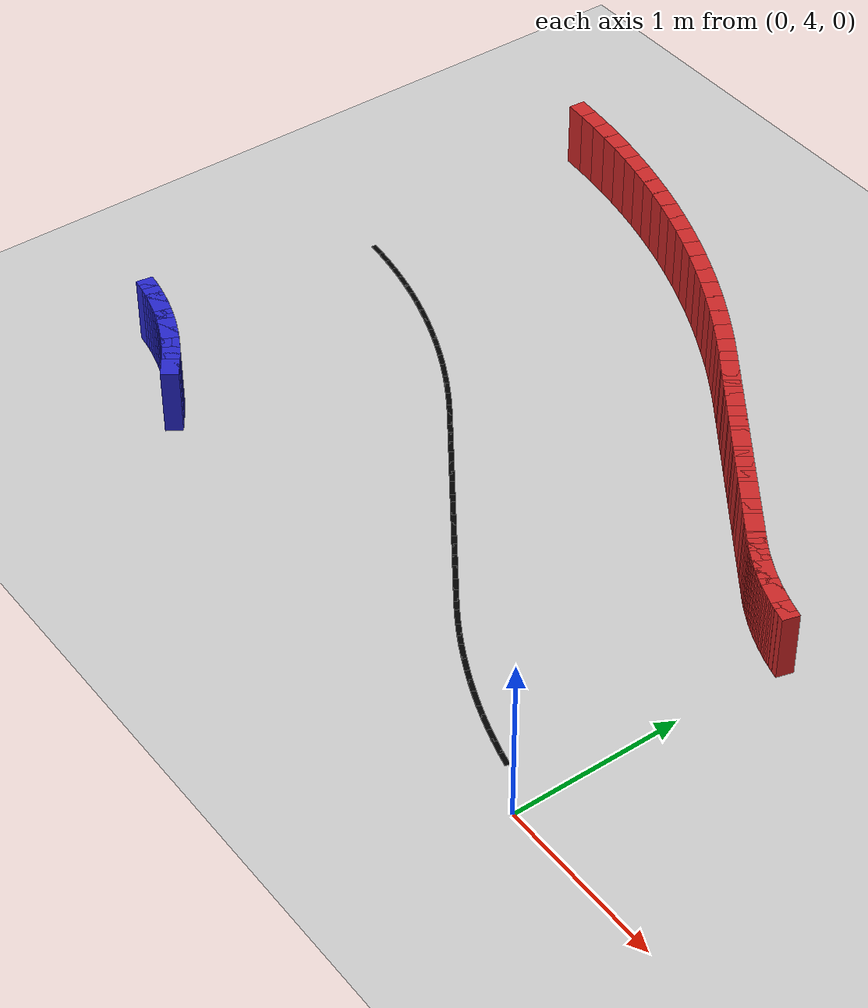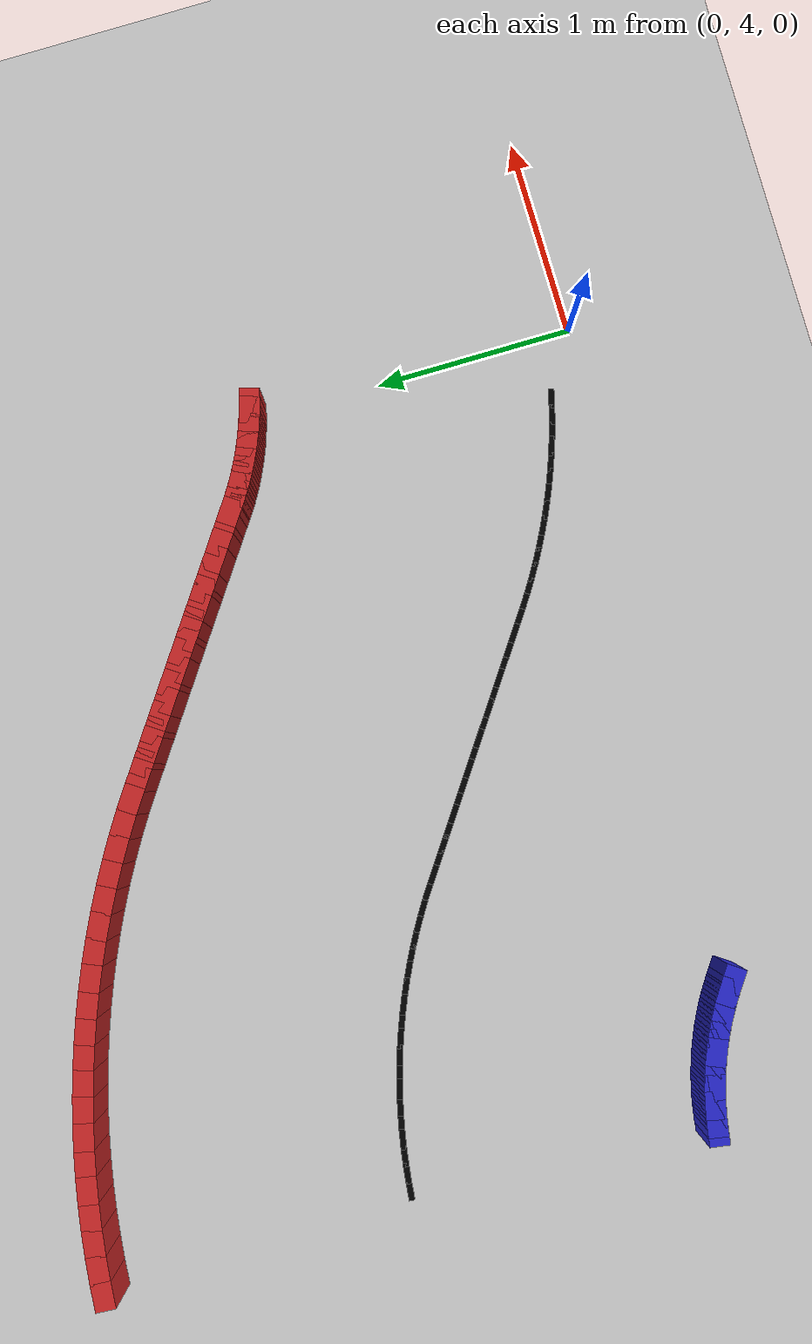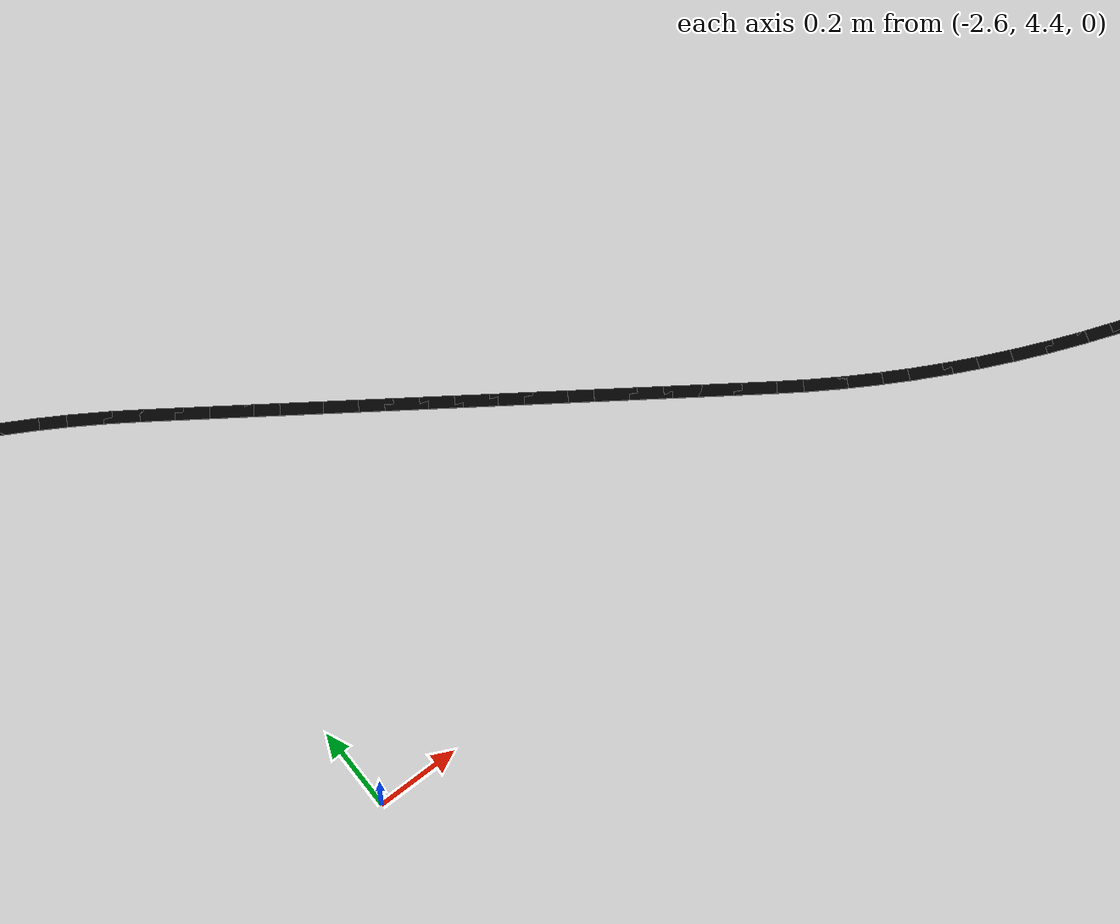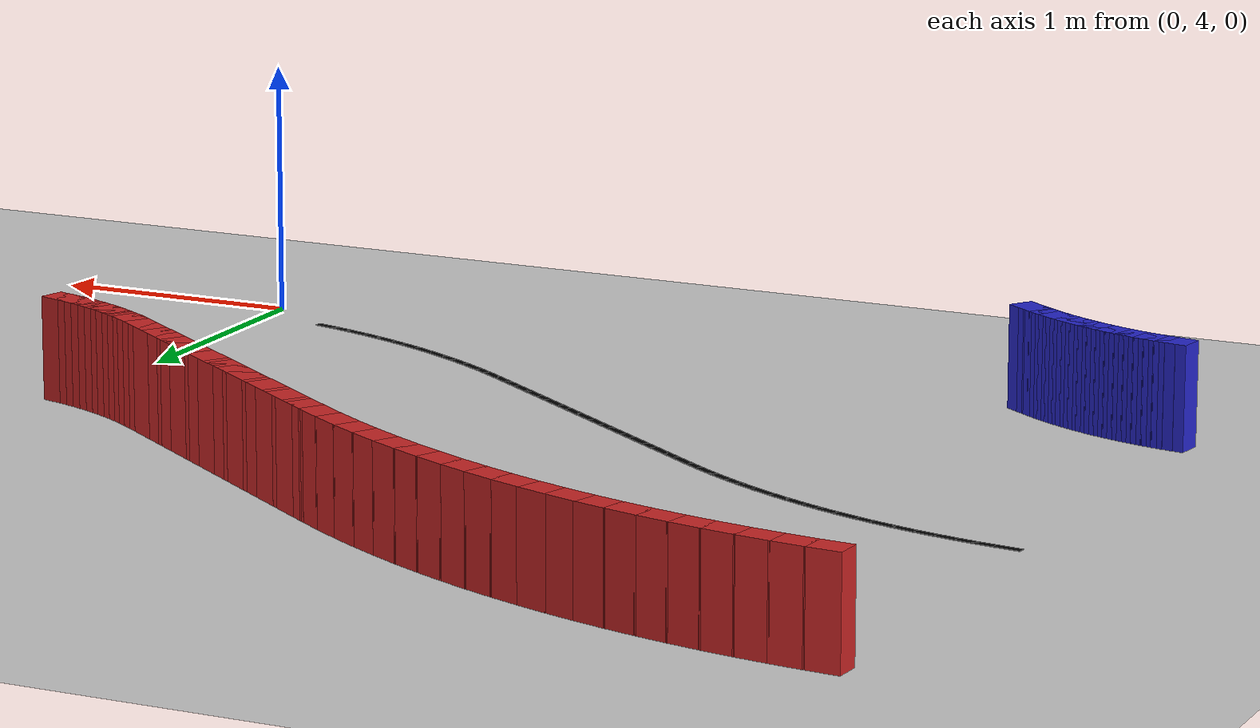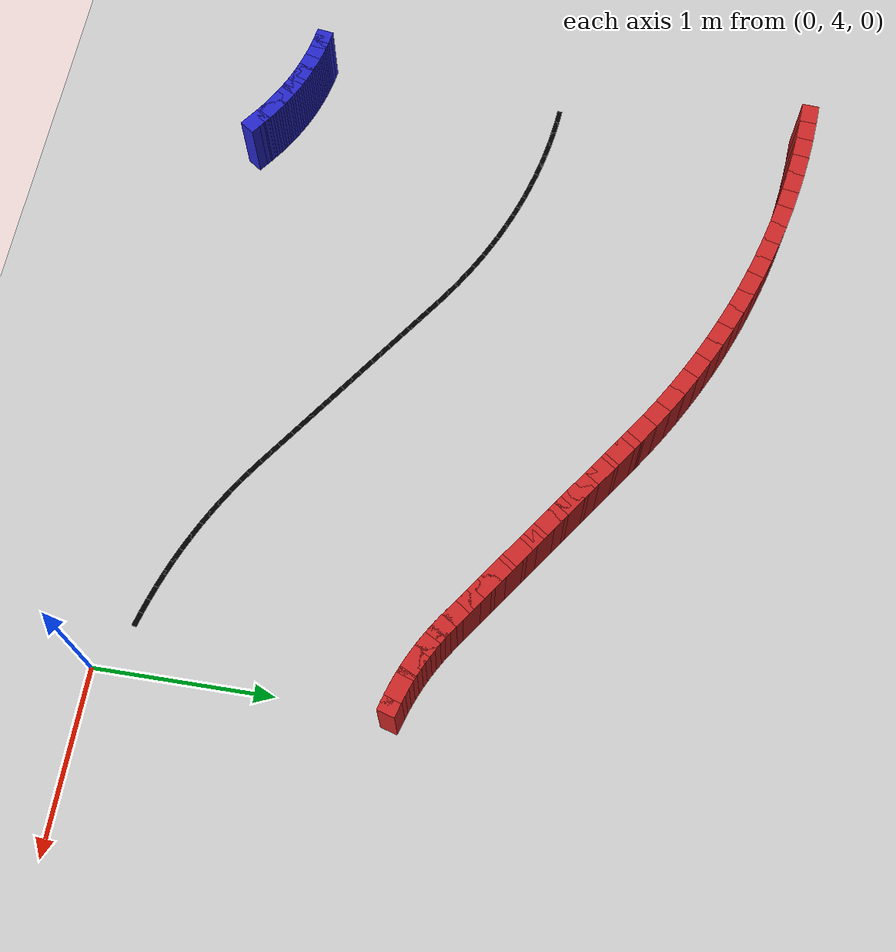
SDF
<sdf version="1.6">
 <world name="new_race_track">
  <include><uri>model://ground_plane</uri></include>
  <include><uri>model://sun</uri></include>
  <model name="iw_649">
   <static>true</static>
   <pose>-3.3089 4.2058 0.200 0 0 2.5307</pose>
   <link name="l">
    <collision name="c"><geometry><box><size>0.1300 0.1 0.4</size></box></geometry></collision>
    <visual name="v">
     <geometry><box><size>0.1300 0.1 0.4</size></box></geometry>
     <material><ambient>0.15 0.15 0.8 1</ambient><diffuse>0.15 0.15 0.8 1</diffuse></material>
    </visual>
   </link>
  </model>
  <model name="iw_650">
   <static>true</static>
   <pose>-3.3590 4.2403 0.200 0 0 2.5446</pose>
   <link name="l">
    <collision name="c"><geometry><box><size>0.1333 0.1 0.4</size></box></geometry></collision>
    <visual name="v">
     <geometry><box><size>0.1333 0.1 0.4</size></box></geometry>
     <material><ambient>0.15 0.15 0.8 1</ambient><diffuse>0.15 0.15 0.8 1</diffuse></material>
    </visual>
   </link>
  </model>
  <model name="iw_651">
   <static>true</static>
   <pose>-3.3938 4.2632 0.200 0 0 2.5724</pose>
   <link name="l">
    <collision name="c"><geometry><box><size>0.1333 0.1 0.4</size></box></geometry></collision>
    <visual name="v">
     <geometry><box><size>0.1333 0.1 0.4</size></box></geometry>
     <material><ambient>0.15 0.15 0.8 1</ambient><diffuse>0.15 0.15 0.8 1</diffuse></material>
    </visual>
   </link>
  </model>
  <model name="iw_652">
   <static>true</static>
   <pose>-3.4292 4.2852 0.200 0 0 2.6001</pose>
   <link name="l">
    <collision name="c"><geometry><box><size>0.1333 0.1 0.4</size></box></geometry></collision>
    <visual name="v">
     <geometry><box><size>0.1333 0.1 0.4</size></box></geometry>
     <material><ambient>0.15 0.15 0.8 1</ambient><diffuse>0.15 0.15 0.8 1</diffuse></material>
    </visual>
   </link>
  </model>
  <model name="iw_653">
   <static>true</static>
   <pose>-3.4651 4.3062 0.200 0 0 2.6279</pose>
   <link name="l">
    <collision name="c"><geometry><box><size>0.1333 0.1 0.4</size></box></geometry></collision>
    <visual name="v">
     <geometry><box><size>0.1333 0.1 0.4</size></box></geometry>
     <material><ambient>0.15 0.15 0.8 1</ambient><diffuse>0.15 0.15 0.8 1</diffuse></material>
    </visual>
   </link>
  </model>
  <model name="iw_654">
   <static>true</static>
   <pose>-3.5017 4.3261 0.200 0 0 2.6557</pose>
   <link name="l">
    <collision name="c"><geometry><box><size>0.1333 0.1 0.4</size></box></geometry></collision>
    <visual name="v">
     <geometry><box><size>0.1333 0.1 0.4</size></box></geometry>
     <material><ambient>0.15 0.15 0.8 1</ambient><diffuse>0.15 0.15 0.8 1</diffuse></material>
    </visual>
   </link>
  </model>
  <model name="iw_655">
   <static>true</static>
   <pose>-3.5388 4.3450 0.200 0 0 2.6834</pose>
   <link name="l">
    <collision name="c"><geometry><box><size>0.1333 0.1 0.4</size></box></geometry></collision>
    <visual name="v">
     <geometry><box><size>0.1333 0.1 0.4</size></box></geometry>
     <material><ambient>0.15 0.15 0.8 1</ambient><diffuse>0.15 0.15 0.8 1</diffuse></material>
    </visual>
   </link>
  </model>
  <model name="iw_656">
   <static>true</static>
   <pose>-3.5764 4.3629 0.200 0 0 2.7112</pose>
   <link name="l">
    <collision name="c"><geometry><box><size>0.1333 0.1 0.4</size></box></geometry></collision>
    <visual name="v">
     <geometry><box><size>0.1333 0.1 0.4</size></box></geometry>
     <material><ambient>0.15 0.15 0.8 1</ambient><diffuse>0.15 0.15 0.8 1</diffuse></material>
    </visual>
   </link>
  </model>
  <model name="iw_657">
   <static>true</static>
   <pose>-3.6144 4.3798 0.200 0 0 2.7390</pose>
   <link name="l">
    <collision name="c"><geometry><box><size>0.1333 0.1 0.4</size></box></geometry></collision>
    <visual name="v">
     <geometry><box><size>0.1333 0.1 0.4</size></box></geometry>
     <material><ambient>0.15 0.15 0.8 1</ambient><diffuse>0.15 0.15 0.8 1</diffuse></material>
    </visual>
   </link>
  </model>
  <model name="iw_658">
   <static>true</static>
   <pose>-3.6530 4.3956 0.200 0 0 2.7667</pose>
   <link name="l">
    <collision name="c"><geometry><box><size>0.1333 0.1 0.4</size></box></geometry></collision>
    <visual name="v">
     <geometry><box><size>0.1333 0.1 0.4</size></box></geometry>
     <material><ambient>0.15 0.15 0.8 1</ambient><diffuse>0.15 0.15 0.8 1</diffuse></material>
    </visual>
   </link>
  </model>
  <model name="iw_659">
   <static>true</static>
   <pose>-3.6919 4.4103 0.200 0 0 2.7945</pose>
   <link name="l">
    <collision name="c"><geometry><box><size>0.1333 0.1 0.4</size></box></geometry></collision>
    <visual name="v">
     <geometry><box><size>0.1333 0.1 0.4</size></box></geometry>
     <material><ambient>0.15 0.15 0.8 1</ambient><diffuse>0.15 0.15 0.8 1</diffuse></material>
    </visual>
   </link>
  </model>
  <model name="iw_660">
   <static>true</static>
   <pose>-3.7313 4.4239 0.200 0 0 2.8223</pose>
   <link name="l">
    <collision name="c"><geometry><box><size>0.1333 0.1 0.4</size></box></geometry></collision>
    <visual name="v">
     <geometry><box><size>0.1333 0.1 0.4</size></box></geometry>
     <material><ambient>0.15 0.15 0.8 1</ambient><diffuse>0.15 0.15 0.8 1</diffuse></material>
    </visual>
   </link>
  </model>
  <model name="iw_661">
   <static>true</static>
   <pose>-3.7710 4.4364 0.200 0 0 2.8500</pose>
   <link name="l">
    <collision name="c"><geometry><box><size>0.1333 0.1 0.4</size></box></geometry></collision>
    <visual name="v">
     <geometry><box><size>0.1333 0.1 0.4</size></box></geometry>
     <material><ambient>0.15 0.15 0.8 1</ambient><diffuse>0.15 0.15 0.8 1</diffuse></material>
    </visual>
   </link>
  </model>
  <model name="iw_662">
   <static>true</static>
   <pose>-3.8110 4.4478 0.200 0 0 2.8778</pose>
   <link name="l">
    <collision name="c"><geometry><box><size>0.1333 0.1 0.4</size></box></geometry></collision>
    <visual name="v">
     <geometry><box><size>0.1333 0.1 0.4</size></box></geometry>
     <material><ambient>0.15 0.15 0.8 1</ambient><diffuse>0.15 0.15 0.8 1</diffuse></material>
    </visual>
   </link>
  </model>
  <model name="iw_663">
   <static>true</static>
   <pose>-3.8514 4.4581 0.200 0 0 2.9056</pose>
   <link name="l">
    <collision name="c"><geometry><box><size>0.1333 0.1 0.4</size></box></geometry></collision>
    <visual name="v">
     <geometry><box><size>0.1333 0.1 0.4</size></box></geometry>
     <material><ambient>0.15 0.15 0.8 1</ambient><diffuse>0.15 0.15 0.8 1</diffuse></material>
    </visual>
   </link>
  </model>
  <model name="iw_664">
   <static>true</static>
   <pose>-3.8920 4.4673 0.200 0 0 2.9333</pose>
   <link name="l">
    <collision name="c"><geometry><box><size>0.1333 0.1 0.4</size></box></geometry></collision>
    <visual name="v">
     <geometry><box><size>0.1333 0.1 0.4</size></box></geometry>
     <material><ambient>0.15 0.15 0.8 1</ambient><diffuse>0.15 0.15 0.8 1</diffuse></material>
    </visual>
   </link>
  </model>
  <model name="iw_665">
   <static>true</static>
   <pose>-3.9329 4.4754 0.200 0 0 2.9611</pose>
   <link name="l">
    <collision name="c"><geometry><box><size>0.1333 0.1 0.4</size></box></geometry></collision>
    <visual name="v">
     <geometry><box><size>0.1333 0.1 0.4</size></box></geometry>
     <material><ambient>0.15 0.15 0.8 1</ambient><diffuse>0.15 0.15 0.8 1</diffuse></material>
    </visual>
   </link>
  </model>
  <model name="iw_666">
   <static>true</static>
   <pose>-3.9739 4.4823 0.200 0 0 2.9889</pose>
   <link name="l">
    <collision name="c"><geometry><box><size>0.1333 0.1 0.4</size></box></geometry></collision>
    <visual name="v">
     <geometry><box><size>0.1333 0.1 0.4</size></box></geometry>
     <material><ambient>0.15 0.15 0.8 1</ambient><diffuse>0.15 0.15 0.8 1</diffuse></material>
    </visual>
   </link>
  </model>
  <model name="ow_619">
   <static>true</static>
   <pose>0.0168 5.6442 0.200 0 0 2.8701</pose>
   <link name="l">
    <collision name="c"><geometry><box><size>0.1314 0.1 0.4</size></box></geometry></collision>
    <visual name="v">
     <geometry><box><size>0.1314 0.1 0.4</size></box></geometry>
     <material><ambient>0.8 0.15 0.15 1</ambient><diffuse>0.8 0.15 0.15 1</diffuse></material>
    </visual>
   </link>
  </model>
  <model name="ow_620">
   <static>true</static>
   <pose>-0.0223 5.6556 0.200 0 0 2.8429</pose>
   <link name="l">
    <collision name="c"><geometry><box><size>0.1314 0.1 0.4</size></box></geometry></collision>
    <visual name="v">
     <geometry><box><size>0.1314 0.1 0.4</size></box></geometry>
     <material><ambient>0.8 0.15 0.15 1</ambient><diffuse>0.8 0.15 0.15 1</diffuse></material>
    </visual>
   </link>
  </model>
  <model name="ow_621">
   <static>true</static>
   <pose>-0.0610 5.6681 0.200 0 0 2.8158</pose>
   <link name="l">
    <collision name="c"><geometry><box><size>0.1314 0.1 0.4</size></box></geometry></collision>
    <visual name="v">
     <geometry><box><size>0.1314 0.1 0.4</size></box></geometry>
     <material><ambient>0.8 0.15 0.15 1</ambient><diffuse>0.8 0.15 0.15 1</diffuse></material>
    </visual>
   </link>
  </model>
  <model name="ow_622">
   <static>true</static>
   <pose>-0.0994 5.6817 0.200 0 0 2.7886</pose>
   <link name="l">
    <collision name="c"><geometry><box><size>0.1314 0.1 0.4</size></box></geometry></collision>
    <visual name="v">
     <geometry><box><size>0.1314 0.1 0.4</size></box></geometry>
     <material><ambient>0.8 0.15 0.15 1</ambient><diffuse>0.8 0.15 0.15 1</diffuse></material>
    </visual>
   </link>
  </model>
  <model name="ow_623">
   <static>true</static>
   <pose>-0.1374 5.6963 0.200 0 0 2.7615</pose>
   <link name="l">
    <collision name="c"><geometry><box><size>0.1314 0.1 0.4</size></box></geometry></collision>
    <visual name="v">
     <geometry><box><size>0.1314 0.1 0.4</size></box></geometry>
     <material><ambient>0.8 0.15 0.15 1</ambient><diffuse>0.8 0.15 0.15 1</diffuse></material>
    </visual>
   </link>
  </model>
  <model name="ow_624">
   <static>true</static>
   <pose>-0.1750 5.7119 0.200 0 0 2.7343</pose>
   <link name="l">
    <collision name="c"><geometry><box><size>0.1314 0.1 0.4</size></box></geometry></collision>
    <visual name="v">
     <geometry><box><size>0.1314 0.1 0.4</size></box></geometry>
     <material><ambient>0.8 0.15 0.15 1</ambient><diffuse>0.8 0.15 0.15 1</diffuse></material>
    </visual>
   </link>
  </model>
  <model name="ow_625">
   <static>true</static>
   <pose>-0.2122 5.7285 0.200 0 0 2.7072</pose>
   <link name="l">
    <collision name="c"><geometry><box><size>0.1314 0.1 0.4</size></box></geometry></collision>
    <visual name="v">
     <geometry><box><size>0.1314 0.1 0.4</size></box></geometry>
     <material><ambient>0.8 0.15 0.15 1</ambient><diffuse>0.8 0.15 0.15 1</diffuse></material>
    </visual>
   </link>
  </model>
  <model name="ow_626">
   <static>true</static>
   <pose>-0.2489 5.7462 0.200 0 0 2.6801</pose>
   <link name="l">
    <collision name="c"><geometry><box><size>0.1314 0.1 0.4</size></box></geometry></collision>
    <visual name="v">
     <geometry><box><size>0.1314 0.1 0.4</size></box></geometry>
     <material><ambient>0.8 0.15 0.15 1</ambient><diffuse>0.8 0.15 0.15 1</diffuse></material>
    </visual>
   </link>
  </model>
  <model name="ow_627">
   <static>true</static>
   <pose>-0.2851 5.7648 0.200 0 0 2.6529</pose>
   <link name="l">
    <collision name="c"><geometry><box><size>0.1314 0.1 0.4</size></box></geometry></collision>
    <visual name="v">
     <geometry><box><size>0.1314 0.1 0.4</size></box></geometry>
     <material><ambient>0.8 0.15 0.15 1</ambient><diffuse>0.8 0.15 0.15 1</diffuse></material>
    </visual>
   </link>
  </model>
  <model name="ow_628">
   <static>true</static>
   <pose>-0.3208 5.7844 0.200 0 0 2.6258</pose>
   <link name="l">
    <collision name="c"><geometry><box><size>0.1314 0.1 0.4</size></box></geometry></collision>
    <visual name="v">
     <geometry><box><size>0.1314 0.1 0.4</size></box></geometry>
     <material><ambient>0.8 0.15 0.15 1</ambient><diffuse>0.8 0.15 0.15 1</diffuse></material>
    </visual>
   </link>
  </model>
  <model name="ow_629">
   <static>true</static>
   <pose>-0.3559 5.8049 0.200 0 0 2.5986</pose>
   <link name="l">
    <collision name="c"><geometry><box><size>0.1314 0.1 0.4</size></box></geometry></collision>
    <visual name="v">
     <geometry><box><size>0.1314 0.1 0.4</size></box></geometry>
     <material><ambient>0.8 0.15 0.15 1</ambient><diffuse>0.8 0.15 0.15 1</diffuse></material>
    </visual>
   </link>
  </model>
  <model name="ow_630">
   <static>true</static>
   <pose>-0.3905 5.8265 0.200 0 0 2.5715</pose>
   <link name="l">
    <collision name="c"><geometry><box><size>0.1314 0.1 0.4</size></box></geometry></collision>
    <visual name="v">
     <geometry><box><size>0.1314 0.1 0.4</size></box></geometry>
     <material><ambient>0.8 0.15 0.15 1</ambient><diffuse>0.8 0.15 0.15 1</diffuse></material>
    </visual>
   </link>
  </model>
  <model name="ow_631">
   <static>true</static>
   <pose>-0.4245 5.8489 0.200 0 0 2.5443</pose>
   <link name="l">
    <collision name="c"><geometry><box><size>0.1314 0.1 0.4</size></box></geometry></collision>
    <visual name="v">
     <geometry><box><size>0.1314 0.1 0.4</size></box></geometry>
     <material><ambient>0.8 0.15 0.15 1</ambient><diffuse>0.8 0.15 0.15 1</diffuse></material>
    </visual>
   </link>
  </model>
  <model name="ow_632">
   <static>true</static>
   <pose>-0.4742 5.8832 0.200 0 0 2.5307</pose>
   <link name="l">
    <collision name="c"><geometry><box><size>0.1300 0.1 0.4</size></box></geometry></collision>
    <visual name="v">
     <geometry><box><size>0.1300 0.1 0.4</size></box></geometry>
     <material><ambient>0.8 0.15 0.15 1</ambient><diffuse>0.8 0.15 0.15 1</diffuse></material>
    </visual>
   </link>
  </model>
  <model name="ow_633">
   <static>true</static>
   <pose>-0.5397 5.9291 0.200 0 0 2.5307</pose>
   <link name="l">
    <collision name="c"><geometry><box><size>0.1300 0.1 0.4</size></box></geometry></collision>
    <visual name="v">
     <geometry><box><size>0.1300 0.1 0.4</size></box></geometry>
     <material><ambient>0.8 0.15 0.15 1</ambient><diffuse>0.8 0.15 0.15 1</diffuse></material>
    </visual>
   </link>
  </model>
  <model name="ow_634">
   <static>true</static>
   <pose>-0.6052 5.9749 0.200 0 0 2.5307</pose>
   <link name="l">
    <collision name="c"><geometry><box><size>0.1300 0.1 0.4</size></box></geometry></collision>
    <visual name="v">
     <geometry><box><size>0.1300 0.1 0.4</size></box></geometry>
     <material><ambient>0.8 0.15 0.15 1</ambient><diffuse>0.8 0.15 0.15 1</diffuse></material>
    </visual>
   </link>
  </model>
  <model name="ow_635">
   <static>true</static>
   <pose>-0.6708 6.0208 0.200 0 0 2.5307</pose>
   <link name="l">
    <collision name="c"><geometry><box><size>0.1300 0.1 0.4</size></box></geometry></collision>
    <visual name="v">
     <geometry><box><size>0.1300 0.1 0.4</size></box></geometry>
     <material><ambient>0.8 0.15 0.15 1</ambient><diffuse>0.8 0.15 0.15 1</diffuse></material>
    </visual>
   </link>
  </model>
  <model name="ow_636">
   <static>true</static>
   <pose>-0.7363 6.0667 0.200 0 0 2.5307</pose>
   <link name="l">
    <collision name="c"><geometry><box><size>0.1300 0.1 0.4</size></box></geometry></collision>
    <visual name="v">
     <geometry><box><size>0.1300 0.1 0.4</size></box></geometry>
     <material><ambient>0.8 0.15 0.15 1</ambient><diffuse>0.8 0.15 0.15 1</diffuse></material>
    </visual>
   </link>
  </model>
  <model name="ow_637">
   <static>true</static>
   <pose>-0.8018 6.1126 0.200 0 0 2.5307</pose>
   <link name="l">
    <collision name="c"><geometry><box><size>0.1300 0.1 0.4</size></box></geometry></collision>
    <visual name="v">
     <geometry><box><size>0.1300 0.1 0.4</size></box></geometry>
     <material><ambient>0.8 0.15 0.15 1</ambient><diffuse>0.8 0.15 0.15 1</diffuse></material>
    </visual>
   </link>
  </model>
  <model name="ow_638">
   <static>true</static>
   <pose>-0.8674 6.1585 0.200 0 0 2.5307</pose>
   <link name="l">
    <collision name="c"><geometry><box><size>0.1300 0.1 0.4</size></box></geometry></collision>
    <visual name="v">
     <geometry><box><size>0.1300 0.1 0.4</size></box></geometry>
     <material><ambient>0.8 0.15 0.15 1</ambient><diffuse>0.8 0.15 0.15 1</diffuse></material>
    </visual>
   </link>
  </model>
  <model name="ow_639">
   <static>true</static>
   <pose>-0.9329 6.2044 0.200 0 0 2.5307</pose>
   <link name="l">
    <collision name="c"><geometry><box><size>0.1300 0.1 0.4</size></box></geometry></collision>
    <visual name="v">
     <geometry><box><size>0.1300 0.1 0.4</size></box></geometry>
     <material><ambient>0.8 0.15 0.15 1</ambient><diffuse>0.8 0.15 0.15 1</diffuse></material>
    </visual>
   </link>
  </model>
  <model name="ow_640">
   <static>true</static>
   <pose>-0.9984 6.2503 0.200 0 0 2.5307</pose>
   <link name="l">
    <collision name="c"><geometry><box><size>0.1300 0.1 0.4</size></box></geometry></collision>
    <visual name="v">
     <geometry><box><size>0.1300 0.1 0.4</size></box></geometry>
     <material><ambient>0.8 0.15 0.15 1</ambient><diffuse>0.8 0.15 0.15 1</diffuse></material>
    </visual>
   </link>
  </model>
  <model name="ow_641">
   <static>true</static>
   <pose>-1.0640 6.2962 0.200 0 0 2.5307</pose>
   <link name="l">
    <collision name="c"><geometry><box><size>0.1300 0.1 0.4</size></box></geometry></collision>
    <visual name="v">
     <geometry><box><size>0.1300 0.1 0.4</size></box></geometry>
     <material><ambient>0.8 0.15 0.15 1</ambient><diffuse>0.8 0.15 0.15 1</diffuse></material>
    </visual>
   </link>
  </model>
  <model name="ow_642">
   <static>true</static>
   <pose>-1.1295 6.3420 0.200 0 0 2.5307</pose>
   <link name="l">
    <collision name="c"><geometry><box><size>0.1300 0.1 0.4</size></box></geometry></collision>
    <visual name="v">
     <geometry><box><size>0.1300 0.1 0.4</size></box></geometry>
     <material><ambient>0.8 0.15 0.15 1</ambient><diffuse>0.8 0.15 0.15 1</diffuse></material>
    </visual>
   </link>
  </model>
  <model name="ow_643">
   <static>true</static>
   <pose>-1.1950 6.3879 0.200 0 0 2.5307</pose>
   <link name="l">
    <collision name="c"><geometry><box><size>0.1300 0.1 0.4</size></box></geometry></collision>
    <visual name="v">
     <geometry><box><size>0.1300 0.1 0.4</size></box></geometry>
     <material><ambient>0.8 0.15 0.15 1</ambient><diffuse>0.8 0.15 0.15 1</diffuse></material>
    </visual>
   </link>
  </model>
  <model name="ow_644">
   <static>true</static>
   <pose>-1.2606 6.4338 0.200 0 0 2.5307</pose>
   <link name="l">
    <collision name="c"><geometry><box><size>0.1300 0.1 0.4</size></box></geometry></collision>
    <visual name="v">
     <geometry><box><size>0.1300 0.1 0.4</size></box></geometry>
     <material><ambient>0.8 0.15 0.15 1</ambient><diffuse>0.8 0.15 0.15 1</diffuse></material>
    </visual>
   </link>
  </model>
  <model name="ow_645">
   <static>true</static>
   <pose>-1.3261 6.4797 0.200 0 0 2.5307</pose>
   <link name="l">
    <collision name="c"><geometry><box><size>0.1300 0.1 0.4</size></box></geometry></collision>
    <visual name="v">
     <geometry><box><size>0.1300 0.1 0.4</size></box></geometry>
     <material><ambient>0.8 0.15 0.15 1</ambient><diffuse>0.8 0.15 0.15 1</diffuse></material>
    </visual>
   </link>
  </model>
  <model name="ow_646">
   <static>true</static>
   <pose>-1.3916 6.5256 0.200 0 0 2.5307</pose>
   <link name="l">
    <collision name="c"><geometry><box><size>0.1300 0.1 0.4</size></box></geometry></collision>
    <visual name="v">
     <geometry><box><size>0.1300 0.1 0.4</size></box></geometry>
     <material><ambient>0.8 0.15 0.15 1</ambient><diffuse>0.8 0.15 0.15 1</diffuse></material>
    </visual>
   </link>
  </model>
  <model name="ow_647">
   <static>true</static>
   <pose>-1.4572 6.5715 0.200 0 0 2.5307</pose>
   <link name="l">
    <collision name="c"><geometry><box><size>0.1300 0.1 0.4</size></box></geometry></collision>
    <visual name="v">
     <geometry><box><size>0.1300 0.1 0.4</size></box></geometry>
     <material><ambient>0.8 0.15 0.15 1</ambient><diffuse>0.8 0.15 0.15 1</diffuse></material>
    </visual>
   </link>
  </model>
  <model name="ow_648">
   <static>true</static>
   <pose>-1.5227 6.6174 0.200 0 0 2.5307</pose>
   <link name="l">
    <collision name="c"><geometry><box><size>0.1300 0.1 0.4</size></box></geometry></collision>
    <visual name="v">
     <geometry><box><size>0.1300 0.1 0.4</size></box></geometry>
     <material><ambient>0.8 0.15 0.15 1</ambient><diffuse>0.8 0.15 0.15 1</diffuse></material>
    </visual>
   </link>
  </model>
  <model name="ow_649">
   <static>true</static>
   <pose>-1.5882 6.6632 0.200 0 0 2.5307</pose>
   <link name="l">
    <collision name="c"><geometry><box><size>0.1300 0.1 0.4</size></box></geometry></collision>
    <visual name="v">
     <geometry><box><size>0.1300 0.1 0.4</size></box></geometry>
     <material><ambient>0.8 0.15 0.15 1</ambient><diffuse>0.8 0.15 0.15 1</diffuse></material>
    </visual>
   </link>
  </model>
  <model name="ow_650">
   <static>true</static>
   <pose>-1.6726 6.7214 0.200 0 0 2.5446</pose>
   <link name="l">
    <collision name="c"><geometry><box><size>0.1333 0.1 0.4</size></box></geometry></collision>
    <visual name="v">
     <geometry><box><size>0.1333 0.1 0.4</size></box></geometry>
     <material><ambient>0.8 0.15 0.15 1</ambient><diffuse>0.8 0.15 0.15 1</diffuse></material>
    </visual>
   </link>
  </model>
  <model name="ow_651">
   <static>true</static>
   <pose>-1.7769 6.7902 0.200 0 0 2.5724</pose>
   <link name="l">
    <collision name="c"><geometry><box><size>0.1333 0.1 0.4</size></box></geometry></collision>
    <visual name="v">
     <geometry><box><size>0.1333 0.1 0.4</size></box></geometry>
     <material><ambient>0.8 0.15 0.15 1</ambient><diffuse>0.8 0.15 0.15 1</diffuse></material>
    </visual>
   </link>
  </model>
  <model name="ow_652">
   <static>true</static>
   <pose>-1.8830 6.8561 0.200 0 0 2.6001</pose>
   <link name="l">
    <collision name="c"><geometry><box><size>0.1333 0.1 0.4</size></box></geometry></collision>
    <visual name="v">
     <geometry><box><size>0.1333 0.1 0.4</size></box></geometry>
     <material><ambient>0.8 0.15 0.15 1</ambient><diffuse>0.8 0.15 0.15 1</diffuse></material>
    </visual>
   </link>
  </model>
  <model name="ow_653">
   <static>true</static>
   <pose>-1.9910 6.9190 0.200 0 0 2.6279</pose>
   <link name="l">
    <collision name="c"><geometry><box><size>0.1333 0.1 0.4</size></box></geometry></collision>
    <visual name="v">
     <geometry><box><size>0.1333 0.1 0.4</size></box></geometry>
     <material><ambient>0.8 0.15 0.15 1</ambient><diffuse>0.8 0.15 0.15 1</diffuse></material>
    </visual>
   </link>
  </model>
  <model name="ow_654">
   <static>true</static>
   <pose>-2.1006 6.9789 0.200 0 0 2.6557</pose>
   <link name="l">
    <collision name="c"><geometry><box><size>0.1333 0.1 0.4</size></box></geometry></collision>
    <visual name="v">
     <geometry><box><size>0.1333 0.1 0.4</size></box></geometry>
     <material><ambient>0.8 0.15 0.15 1</ambient><diffuse>0.8 0.15 0.15 1</diffuse></material>
    </visual>
   </link>
  </model>
  <model name="ow_655">
   <static>true</static>
   <pose>-2.2119 7.0357 0.200 0 0 2.6834</pose>
   <link name="l">
    <collision name="c"><geometry><box><size>0.1333 0.1 0.4</size></box></geometry></collision>
    <visual name="v">
     <geometry><box><size>0.1333 0.1 0.4</size></box></geometry>
     <material><ambient>0.8 0.15 0.15 1</ambient><diffuse>0.8 0.15 0.15 1</diffuse></material>
    </visual>
   </link>
  </model>
  <model name="ow_656">
   <static>true</static>
   <pose>-2.3247 7.0894 0.200 0 0 2.7112</pose>
   <link name="l">
    <collision name="c"><geometry><box><size>0.1333 0.1 0.4</size></box></geometry></collision>
    <visual name="v">
     <geometry><box><size>0.1333 0.1 0.4</size></box></geometry>
     <material><ambient>0.8 0.15 0.15 1</ambient><diffuse>0.8 0.15 0.15 1</diffuse></material>
    </visual>
   </link>
  </model>
  <model name="ow_657">
   <static>true</static>
   <pose>-2.4390 7.1399 0.200 0 0 2.7390</pose>
   <link name="l">
    <collision name="c"><geometry><box><size>0.1333 0.1 0.4</size></box></geometry></collision>
    <visual name="v">
     <geometry><box><size>0.1333 0.1 0.4</size></box></geometry>
     <material><ambient>0.8 0.15 0.15 1</ambient><diffuse>0.8 0.15 0.15 1</diffuse></material>
    </visual>
   </link>
  </model>
  <model name="ow_658">
   <static>true</static>
   <pose>-2.5546 7.1873 0.200 0 0 2.7667</pose>
   <link name="l">
    <collision name="c"><geometry><box><size>0.1333 0.1 0.4</size></box></geometry></collision>
    <visual name="v">
     <geometry><box><size>0.1333 0.1 0.4</size></box></geometry>
     <material><ambient>0.8 0.15 0.15 1</ambient><diffuse>0.8 0.15 0.15 1</diffuse></material>
    </visual>
   </link>
  </model>
  <model name="ow_659">
   <static>true</static>
   <pose>-2.6715 7.2314 0.200 0 0 2.7945</pose>
   <link name="l">
    <collision name="c"><geometry><box><size>0.1333 0.1 0.4</size></box></geometry></collision>
    <visual name="v">
     <geometry><box><size>0.1333 0.1 0.4</size></box></geometry>
     <material><ambient>0.8 0.15 0.15 1</ambient><diffuse>0.8 0.15 0.15 1</diffuse></material>
    </visual>
   </link>
  </model>
  <model name="ow_660">
   <static>true</static>
   <pose>-2.7895 7.2723 0.200 0 0 2.8223</pose>
   <link name="l">
    <collision name="c"><geometry><box><size>0.1333 0.1 0.4</size></box></geometry></collision>
    <visual name="v">
     <geometry><box><size>0.1333 0.1 0.4</size></box></geometry>
     <material><ambient>0.8 0.15 0.15 1</ambient><diffuse>0.8 0.15 0.15 1</diffuse></material>
    </visual>
   </link>
  </model>
  <model name="ow_661">
   <static>true</static>
   <pose>-2.9087 7.3098 0.200 0 0 2.8500</pose>
   <link name="l">
    <collision name="c"><geometry><box><size>0.1333 0.1 0.4</size></box></geometry></collision>
    <visual name="v">
     <geometry><box><size>0.1333 0.1 0.4</size></box></geometry>
     <material><ambient>0.8 0.15 0.15 1</ambient><diffuse>0.8 0.15 0.15 1</diffuse></material>
    </visual>
   </link>
  </model>
  <model name="ow_662">
   <static>true</static>
   <pose>-3.0288 7.3441 0.200 0 0 2.8778</pose>
   <link name="l">
    <collision name="c"><geometry><box><size>0.1333 0.1 0.4</size></box></geometry></collision>
    <visual name="v">
     <geometry><box><size>0.1333 0.1 0.4</size></box></geometry>
     <material><ambient>0.8 0.15 0.15 1</ambient><diffuse>0.8 0.15 0.15 1</diffuse></material>
    </visual>
   </link>
  </model>
  <model name="ow_663">
   <static>true</static>
   <pose>-3.1499 7.3750 0.200 0 0 2.9056</pose>
   <link name="l">
    <collision name="c"><geometry><box><size>0.1333 0.1 0.4</size></box></geometry></collision>
    <visual name="v">
     <geometry><box><size>0.1333 0.1 0.4</size></box></geometry>
     <material><ambient>0.8 0.15 0.15 1</ambient><diffuse>0.8 0.15 0.15 1</diffuse></material>
    </visual>
   </link>
  </model>
  <model name="ow_664">
   <static>true</static>
   <pose>-3.2718 7.4025 0.200 0 0 2.9333</pose>
   <link name="l">
    <collision name="c"><geometry><box><size>0.1333 0.1 0.4</size></box></geometry></collision>
    <visual name="v">
     <geometry><box><size>0.1333 0.1 0.4</size></box></geometry>
     <material><ambient>0.8 0.15 0.15 1</ambient><diffuse>0.8 0.15 0.15 1</diffuse></material>
    </visual>
   </link>
  </model>
  <model name="ow_665">
   <static>true</static>
   <pose>-3.3944 7.4266 0.200 0 0 2.9611</pose>
   <link name="l">
    <collision name="c"><geometry><box><size>0.1333 0.1 0.4</size></box></geometry></collision>
    <visual name="v">
     <geometry><box><size>0.1333 0.1 0.4</size></box></geometry>
     <material><ambient>0.8 0.15 0.15 1</ambient><diffuse>0.8 0.15 0.15 1</diffuse></material>
    </visual>
   </link>
  </model>
  <model name="ow_666">
   <static>true</static>
   <pose>-3.5176 7.4473 0.200 0 0 2.9889</pose>
   <link name="l">
    <collision name="c"><geometry><box><size>0.1333 0.1 0.4</size></box></geometry></collision>
    <visual name="v">
     <geometry><box><size>0.1333 0.1 0.4</size></box></geometry>
     <material><ambient>0.8 0.15 0.15 1</ambient><diffuse>0.8 0.15 0.15 1</diffuse></material>
    </visual>
   </link>
  </model>
  <model name="ow_667">
   <static>true</static>
   <pose>-3.6413 7.4646 0.200 0 0 3.0166</pose>
   <link name="l">
    <collision name="c"><geometry><box><size>0.1333 0.1 0.4</size></box></geometry></collision>
    <visual name="v">
     <geometry><box><size>0.1333 0.1 0.4</size></box></geometry>
     <material><ambient>0.8 0.15 0.15 1</ambient><diffuse>0.8 0.15 0.15 1</diffuse></material>
    </visual>
   </link>
  </model>
  <model name="ow_668">
   <static>true</static>
   <pose>-3.7655 7.4785 0.200 0 0 3.0444</pose>
   <link name="l">
    <collision name="c"><geometry><box><size>0.1333 0.1 0.4</size></box></geometry></collision>
    <visual name="v">
     <geometry><box><size>0.1333 0.1 0.4</size></box></geometry>
     <material><ambient>0.8 0.15 0.15 1</ambient><diffuse>0.8 0.15 0.15 1</diffuse></material>
    </visual>
   </link>
  </model>
  <model name="ow_669">
   <static>true</static>
   <pose>-3.8900 7.4889 0.200 0 0 3.0722</pose>
   <link name="l">
    <collision name="c"><geometry><box><size>0.1333 0.1 0.4</size></box></geometry></collision>
    <visual name="v">
     <geometry><box><size>0.1333 0.1 0.4</size></box></geometry>
     <material><ambient>0.8 0.15 0.15 1</ambient><diffuse>0.8 0.15 0.15 1</diffuse></material>
    </visual>
   </link>
  </model>
  <model name="line_618">
   <static>true</static>
   <pose>-0.3067 4.1783 0.002 0 0 2.8972</pose>
   <link name="l">
    <visual name="v">
     <geometry><box><size>0.1014 0.03 0.002</size></box></geometry>
     <material><ambient>0 0 0 1</ambient><diffuse>0 0 0 1</diffuse></material>
    </visual>
   </link>
  </model>
  <model name="line_619">
   <static>true</static>
   <pose>-0.3855 4.1991 0.002 0 0 2.8701</pose>
   <link name="l">
    <visual name="v">
     <geometry><box><size>0.1014 0.03 0.002</size></box></geometry>
     <material><ambient>0 0 0 1</ambient><diffuse>0 0 0 1</diffuse></material>
    </visual>
   </link>
  </model>
  <model name="line_620">
   <static>true</static>
   <pose>-0.4636 4.2220 0.002 0 0 2.8429</pose>
   <link name="l">
    <visual name="v">
     <geometry><box><size>0.1014 0.03 0.002</size></box></geometry>
     <material><ambient>0 0 0 1</ambient><diffuse>0 0 0 1</diffuse></material>
    </visual>
   </link>
  </model>
  <model name="line_621">
   <static>true</static>
   <pose>-0.5411 4.2470 0.002 0 0 2.8158</pose>
   <link name="l">
    <visual name="v">
     <geometry><box><size>0.1014 0.03 0.002</size></box></geometry>
     <material><ambient>0 0 0 1</ambient><diffuse>0 0 0 1</diffuse></material>
    </visual>
   </link>
  </model>
  <model name="line_622">
   <static>true</static>
   <pose>-0.6179 4.2741 0.002 0 0 2.7886</pose>
   <link name="l">
    <visual name="v">
     <geometry><box><size>0.1014 0.03 0.002</size></box></geometry>
     <material><ambient>0 0 0 1</ambient><diffuse>0 0 0 1</diffuse></material>
    </visual>
   </link>
  </model>
  <model name="line_623">
   <static>true</static>
   <pose>-0.6940 4.3033 0.002 0 0 2.7615</pose>
   <link name="l">
    <visual name="v">
     <geometry><box><size>0.1014 0.03 0.002</size></box></geometry>
     <material><ambient>0 0 0 1</ambient><diffuse>0 0 0 1</diffuse></material>
    </visual>
   </link>
  </model>
  <model name="line_624">
   <static>true</static>
   <pose>-0.7692 4.3346 0.002 0 0 2.7343</pose>
   <link name="l">
    <visual name="v">
     <geometry><box><size>0.1014 0.03 0.002</size></box></geometry>
     <material><ambient>0 0 0 1</ambient><diffuse>0 0 0 1</diffuse></material>
    </visual>
   </link>
  </model>
  <model name="line_625">
   <static>true</static>
   <pose>-0.8435 4.3678 0.002 0 0 2.7072</pose>
   <link name="l">
    <visual name="v">
     <geometry><box><size>0.1014 0.03 0.002</size></box></geometry>
     <material><ambient>0 0 0 1</ambient><diffuse>0 0 0 1</diffuse></material>
    </visual>
   </link>
  </model>
  <model name="line_626">
   <static>true</static>
   <pose>-0.9169 4.4031 0.002 0 0 2.6801</pose>
   <link name="l">
    <visual name="v">
     <geometry><box><size>0.1014 0.03 0.002</size></box></geometry>
     <material><ambient>0 0 0 1</ambient><diffuse>0 0 0 1</diffuse></material>
    </visual>
   </link>
  </model>
  <model name="line_627">
   <static>true</static>
   <pose>-0.9893 4.4404 0.002 0 0 2.6529</pose>
   <link name="l">
    <visual name="v">
     <geometry><box><size>0.1014 0.03 0.002</size></box></geometry>
     <material><ambient>0 0 0 1</ambient><diffuse>0 0 0 1</diffuse></material>
    </visual>
   </link>
  </model>
  <model name="line_628">
   <static>true</static>
   <pose>-1.0607 4.4796 0.002 0 0 2.6258</pose>
   <link name="l">
    <visual name="v">
     <geometry><box><size>0.1014 0.03 0.002</size></box></geometry>
     <material><ambient>0 0 0 1</ambient><diffuse>0 0 0 1</diffuse></material>
    </visual>
   </link>
  </model>
  <model name="line_629">
   <static>true</static>
   <pose>-1.1310 4.5207 0.002 0 0 2.5986</pose>
   <link name="l">
    <visual name="v">
     <geometry><box><size>0.1014 0.03 0.002</size></box></geometry>
     <material><ambient>0 0 0 1</ambient><diffuse>0 0 0 1</diffuse></material>
    </visual>
   </link>
  </model>
  <model name="line_630">
   <static>true</static>
   <pose>-1.2001 4.5637 0.002 0 0 2.5715</pose>
   <link name="l">
    <visual name="v">
     <geometry><box><size>0.1014 0.03 0.002</size></box></geometry>
     <material><ambient>0 0 0 1</ambient><diffuse>0 0 0 1</diffuse></material>
    </visual>
   </link>
  </model>
  <model name="line_631">
   <static>true</static>
   <pose>-1.2681 4.6086 0.002 0 0 2.5443</pose>
   <link name="l">
    <visual name="v">
     <geometry><box><size>0.1014 0.03 0.002</size></box></geometry>
     <material><ambient>0 0 0 1</ambient><diffuse>0 0 0 1</diffuse></material>
    </visual>
   </link>
  </model>
  <model name="line_632">
   <static>true</static>
   <pose>-1.3345 4.6544 0.002 0 0 2.5307</pose>
   <link name="l">
    <visual name="v">
     <geometry><box><size>0.1000 0.03 0.002</size></box></geometry>
     <material><ambient>0 0 0 1</ambient><diffuse>0 0 0 1</diffuse></material>
    </visual>
   </link>
  </model>
  <model name="line_633">
   <static>true</static>
   <pose>-1.4001 4.7003 0.002 0 0 2.5307</pose>
   <link name="l">
    <visual name="v">
     <geometry><box><size>0.1000 0.03 0.002</size></box></geometry>
     <material><ambient>0 0 0 1</ambient><diffuse>0 0 0 1</diffuse></material>
    </visual>
   </link>
  </model>
  <model name="line_634">
   <static>true</static>
   <pose>-1.4656 4.7462 0.002 0 0 2.5307</pose>
   <link name="l">
    <visual name="v">
     <geometry><box><size>0.1000 0.03 0.002</size></box></geometry>
     <material><ambient>0 0 0 1</ambient><diffuse>0 0 0 1</diffuse></material>
    </visual>
   </link>
  </model>
  <model name="line_635">
   <static>true</static>
   <pose>-1.5311 4.7921 0.002 0 0 2.5307</pose>
   <link name="l">
    <visual name="v">
     <geometry><box><size>0.1000 0.03 0.002</size></box></geometry>
     <material><ambient>0 0 0 1</ambient><diffuse>0 0 0 1</diffuse></material>
    </visual>
   </link>
  </model>
  <model name="line_636">
   <static>true</static>
   <pose>-1.5967 4.8380 0.002 0 0 2.5307</pose>
   <link name="l">
    <visual name="v">
     <geometry><box><size>0.1000 0.03 0.002</size></box></geometry>
     <material><ambient>0 0 0 1</ambient><diffuse>0 0 0 1</diffuse></material>
    </visual>
   </link>
  </model>
  <model name="line_637">
   <static>true</static>
   <pose>-1.6622 4.8839 0.002 0 0 2.5307</pose>
   <link name="l">
    <visual name="v">
     <geometry><box><size>0.1000 0.03 0.002</size></box></geometry>
     <material><ambient>0 0 0 1</ambient><diffuse>0 0 0 1</diffuse></material>
    </visual>
   </link>
  </model>
  <model name="line_638">
   <static>true</static>
   <pose>-1.7277 4.9298 0.002 0 0 2.5307</pose>
   <link name="l">
    <visual name="v">
     <geometry><box><size>0.1000 0.03 0.002</size></box></geometry>
     <material><ambient>0 0 0 1</ambient><diffuse>0 0 0 1</diffuse></material>
    </visual>
   </link>
  </model>
  <model name="line_639">
   <static>true</static>
   <pose>-1.7933 4.9757 0.002 0 0 2.5307</pose>
   <link name="l">
    <visual name="v">
     <geometry><box><size>0.1000 0.03 0.002</size></box></geometry>
     <material><ambient>0 0 0 1</ambient><diffuse>0 0 0 1</diffuse></material>
    </visual>
   </link>
  </model>
  <model name="line_640">
   <static>true</static>
   <pose>-1.8588 5.0215 0.002 0 0 2.5307</pose>
   <link name="l">
    <visual name="v">
     <geometry><box><size>0.1000 0.03 0.002</size></box></geometry>
     <material><ambient>0 0 0 1</ambient><diffuse>0 0 0 1</diffuse></material>
    </visual>
   </link>
  </model>
  <model name="line_641">
   <static>true</static>
   <pose>-1.9243 5.0674 0.002 0 0 2.5307</pose>
   <link name="l">
    <visual name="v">
     <geometry><box><size>0.1000 0.03 0.002</size></box></geometry>
     <material><ambient>0 0 0 1</ambient><diffuse>0 0 0 1</diffuse></material>
    </visual>
   </link>
  </model>
  <model name="line_642">
   <static>true</static>
   <pose>-1.9899 5.1133 0.002 0 0 2.5307</pose>
   <link name="l">
    <visual name="v">
     <geometry><box><size>0.1000 0.03 0.002</size></box></geometry>
     <material><ambient>0 0 0 1</ambient><diffuse>0 0 0 1</diffuse></material>
    </visual>
   </link>
  </model>
  <model name="line_643">
   <static>true</static>
   <pose>-2.0554 5.1592 0.002 0 0 2.5307</pose>
   <link name="l">
    <visual name="v">
     <geometry><box><size>0.1000 0.03 0.002</size></box></geometry>
     <material><ambient>0 0 0 1</ambient><diffuse>0 0 0 1</diffuse></material>
    </visual>
   </link>
  </model>
  <model name="line_644">
   <static>true</static>
   <pose>-2.1209 5.2051 0.002 0 0 2.5307</pose>
   <link name="l">
    <visual name="v">
     <geometry><box><size>0.1000 0.03 0.002</size></box></geometry>
     <material><ambient>0 0 0 1</ambient><diffuse>0 0 0 1</diffuse></material>
    </visual>
   </link>
  </model>
  <model name="line_645">
   <static>true</static>
   <pose>-2.1865 5.2510 0.002 0 0 2.5307</pose>
   <link name="l">
    <visual name="v">
     <geometry><box><size>0.1000 0.03 0.002</size></box></geometry>
     <material><ambient>0 0 0 1</ambient><diffuse>0 0 0 1</diffuse></material>
    </visual>
   </link>
  </model>
  <model name="line_646">
   <static>true</static>
   <pose>-2.2520 5.2969 0.002 0 0 2.5307</pose>
   <link name="l">
    <visual name="v">
     <geometry><box><size>0.1000 0.03 0.002</size></box></geometry>
     <material><ambient>0 0 0 1</ambient><diffuse>0 0 0 1</diffuse></material>
    </visual>
   </link>
  </model>
  <model name="line_647">
   <static>true</static>
   <pose>-2.3175 5.3427 0.002 0 0 2.5307</pose>
   <link name="l">
    <visual name="v">
     <geometry><box><size>0.1000 0.03 0.002</size></box></geometry>
     <material><ambient>0 0 0 1</ambient><diffuse>0 0 0 1</diffuse></material>
    </visual>
   </link>
  </model>
  <model name="line_648">
   <static>true</static>
   <pose>-2.3830 5.3886 0.002 0 0 2.5307</pose>
   <link name="l">
    <visual name="v">
     <geometry><box><size>0.1000 0.03 0.002</size></box></geometry>
     <material><ambient>0 0 0 1</ambient><diffuse>0 0 0 1</diffuse></material>
    </visual>
   </link>
  </model>
  <model name="line_649">
   <static>true</static>
   <pose>-2.4486 5.4345 0.002 0 0 2.5307</pose>
   <link name="l">
    <visual name="v">
     <geometry><box><size>0.1000 0.03 0.002</size></box></geometry>
     <material><ambient>0 0 0 1</ambient><diffuse>0 0 0 1</diffuse></material>
    </visual>
   </link>
  </model>
  <model name="line_650">
   <static>true</static>
   <pose>-2.5158 5.4809 0.002 0 0 2.5446</pose>
   <link name="l">
    <visual name="v">
     <geometry><box><size>0.1033 0.03 0.002</size></box></geometry>
     <material><ambient>0 0 0 1</ambient><diffuse>0 0 0 1</diffuse></material>
    </visual>
   </link>
  </model>
  <model name="line_651">
   <static>true</static>
   <pose>-2.5853 5.5267 0.002 0 0 2.5724</pose>
   <link name="l">
    <visual name="v">
     <geometry><box><size>0.1033 0.03 0.002</size></box></geometry>
     <material><ambient>0 0 0 1</ambient><diffuse>0 0 0 1</diffuse></material>
    </visual>
   </link>
  </model>
  <model name="line_652">
   <static>true</static>
   <pose>-2.6561 5.5706 0.002 0 0 2.6001</pose>
   <link name="l">
    <visual name="v">
     <geometry><box><size>0.1033 0.03 0.002</size></box></geometry>
     <material><ambient>0 0 0 1</ambient><diffuse>0 0 0 1</diffuse></material>
    </visual>
   </link>
  </model>
  <model name="line_653">
   <static>true</static>
   <pose>-2.7281 5.6126 0.002 0 0 2.6279</pose>
   <link name="l">
    <visual name="v">
     <geometry><box><size>0.1033 0.03 0.002</size></box></geometry>
     <material><ambient>0 0 0 1</ambient><diffuse>0 0 0 1</diffuse></material>
    </visual>
   </link>
  </model>
  <model name="line_654">
   <static>true</static>
   <pose>-2.8012 5.6525 0.002 0 0 2.6557</pose>
   <link name="l">
    <visual name="v">
     <geometry><box><size>0.1033 0.03 0.002</size></box></geometry>
     <material><ambient>0 0 0 1</ambient><diffuse>0 0 0 1</diffuse></material>
    </visual>
   </link>
  </model>
  <model name="line_655">
   <static>true</static>
   <pose>-2.8753 5.6904 0.002 0 0 2.6834</pose>
   <link name="l">
    <visual name="v">
     <geometry><box><size>0.1033 0.03 0.002</size></box></geometry>
     <material><ambient>0 0 0 1</ambient><diffuse>0 0 0 1</diffuse></material>
    </visual>
   </link>
  </model>
  <model name="line_656">
   <static>true</static>
   <pose>-2.9505 5.7262 0.002 0 0 2.7112</pose>
   <link name="l">
    <visual name="v">
     <geometry><box><size>0.1033 0.03 0.002</size></box></geometry>
     <material><ambient>0 0 0 1</ambient><diffuse>0 0 0 1</diffuse></material>
    </visual>
   </link>
  </model>
  <model name="line_657">
   <static>true</static>
   <pose>-3.0267 5.7599 0.002 0 0 2.7390</pose>
   <link name="l">
    <visual name="v">
     <geometry><box><size>0.1033 0.03 0.002</size></box></geometry>
     <material><ambient>0 0 0 1</ambient><diffuse>0 0 0 1</diffuse></material>
    </visual>
   </link>
  </model>
  <model name="line_658">
   <static>true</static>
   <pose>-3.1038 5.7914 0.002 0 0 2.7667</pose>
   <link name="l">
    <visual name="v">
     <geometry><box><size>0.1033 0.03 0.002</size></box></geometry>
     <material><ambient>0 0 0 1</ambient><diffuse>0 0 0 1</diffuse></material>
    </visual>
   </link>
  </model>
  <model name="line_659">
   <static>true</static>
   <pose>-3.1817 5.8208 0.002 0 0 2.7945</pose>
   <link name="l">
    <visual name="v">
     <geometry><box><size>0.1033 0.03 0.002</size></box></geometry>
     <material><ambient>0 0 0 1</ambient><diffuse>0 0 0 1</diffuse></material>
    </visual>
   </link>
  </model>
  <model name="line_660">
   <static>true</static>
   <pose>-3.2604 5.8481 0.002 0 0 2.8223</pose>
   <link name="l">
    <visual name="v">
     <geometry><box><size>0.1033 0.03 0.002</size></box></geometry>
     <material><ambient>0 0 0 1</ambient><diffuse>0 0 0 1</diffuse></material>
    </visual>
   </link>
  </model>
  <model name="line_661">
   <static>true</static>
   <pose>-3.3398 5.8731 0.002 0 0 2.8500</pose>
   <link name="l">
    <visual name="v">
     <geometry><box><size>0.1033 0.03 0.002</size></box></geometry>
     <material><ambient>0 0 0 1</ambient><diffuse>0 0 0 1</diffuse></material>
    </visual>
   </link>
  </model>
  <model name="line_662">
   <static>true</static>
   <pose>-3.4199 5.8960 0.002 0 0 2.8778</pose>
   <link name="l">
    <visual name="v">
     <geometry><box><size>0.1033 0.03 0.002</size></box></geometry>
     <material><ambient>0 0 0 1</ambient><diffuse>0 0 0 1</diffuse></material>
    </visual>
   </link>
  </model>
  <model name="line_663">
   <static>true</static>
   <pose>-3.5006 5.9166 0.002 0 0 2.9056</pose>
   <link name="l">
    <visual name="v">
     <geometry><box><size>0.1033 0.03 0.002</size></box></geometry>
     <material><ambient>0 0 0 1</ambient><diffuse>0 0 0 1</diffuse></material>
    </visual>
   </link>
  </model>
  <model name="line_664">
   <static>true</static>
   <pose>-3.5819 5.9349 0.002 0 0 2.9333</pose>
   <link name="l">
    <visual name="v">
     <geometry><box><size>0.1033 0.03 0.002</size></box></geometry>
     <material><ambient>0 0 0 1</ambient><diffuse>0 0 0 1</diffuse></material>
    </visual>
   </link>
  </model>
  <model name="line_665">
   <static>true</static>
   <pose>-3.6636 5.9510 0.002 0 0 2.9611</pose>
   <link name="l">
    <visual name="v">
     <geometry><box><size>0.1033 0.03 0.002</size></box></geometry>
     <material><ambient>0 0 0 1</ambient><diffuse>0 0 0 1</diffuse></material>
    </visual>
   </link>
  </model>
  <model name="line_666">
   <static>true</static>
   <pose>-3.7457 5.9648 0.002 0 0 2.9889</pose>
   <link name="l">
    <visual name="v">
     <geometry><box><size>0.1033 0.03 0.002</size></box></geometry>
     <material><ambient>0 0 0 1</ambient><diffuse>0 0 0 1</diffuse></material>
    </visual>
   </link>
  </model>
  <model name="line_667">
   <static>true</static>
   <pose>-3.8282 5.9763 0.002 0 0 3.0166</pose>
   <link name="l">
    <visual name="v">
     <geometry><box><size>0.1033 0.03 0.002</size></box></geometry>
     <material><ambient>0 0 0 1</ambient><diffuse>0 0 0 1</diffuse></material>
    </visual>
   </link>
  </model>
  <model name="line_668">
   <static>true</static>
   <pose>-3.9110 5.9856 0.002 0 0 3.0444</pose>
   <link name="l">
    <visual name="v">
     <geometry><box><size>0.1033 0.03 0.002</size></box></geometry>
     <material><ambient>0 0 0 1</ambient><diffuse>0 0 0 1</diffuse></material>
    </visual>
   </link>
  </model>
 </world>
</sdf>
